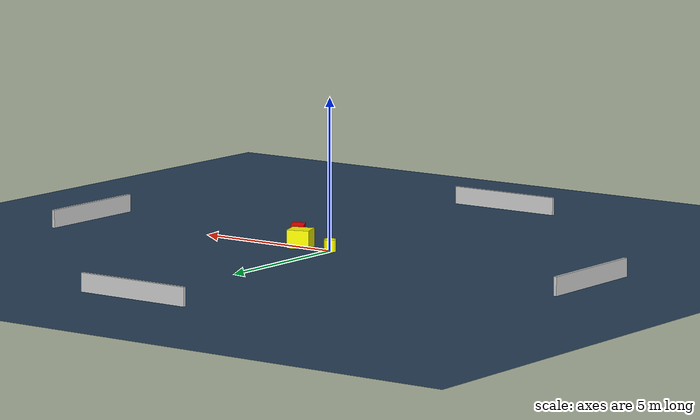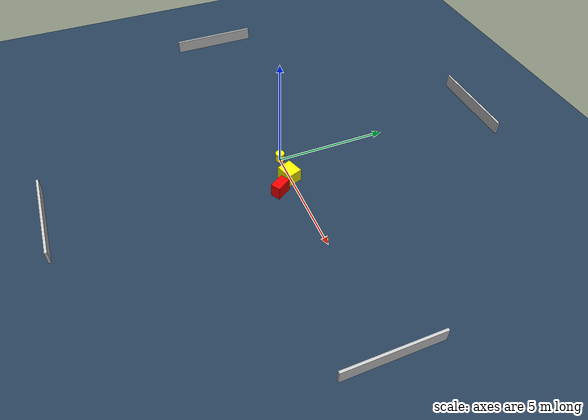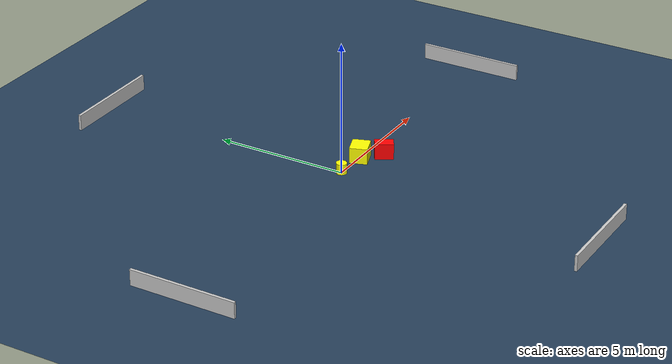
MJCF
<?xml version="1.0" ?>
<mujoco model="generated_environment">
  <option timestep="0.01" integrator="RK4" cone="elliptic"/>
  <default>
    <geom density="1"/>
  </default>
  <asset>
    <texture builtin="gradient" height="3072" name="skybox" rgb1="0.3 0.5 0.7" rgb2="0 0 0" type="skybox" width="512"/>
    <texture builtin="checker" height="300" name="groundplane" rgb1="0.2 0.3 0.4" rgb2="0.1 0.2 0.3" type="2d" width="300"/>
    <material name="groundplane" reflectance="0.2" texrepeat="5 5" texture="groundplane"/>
  </asset>
  <worldbody>
    <light dir="0 0 -1" directional="true" pos="0 0 1.5"/>
    <geom condim="3" friction="0.5 0.005 0.001" material="groundplane" name="floor" pos="0 0 0" size="0 0 0.05" type="plane"/>
    <body name="walls">
      <geom name="wall_1" condim="4" pos="-10.0 0.0 0.3" rgba="0.800000011920929 0.800000011920929 0.800000011920929 1.0" size="0.05 2.0 0.3" type="box"/>
      <geom name="wall_2" condim="4" pos="10.0 0.0 0.3" rgba="0.800000011920929 0.800000011920929 0.800000011920929 1.0" size="0.05 2.0 0.3" type="box"/>
      <geom name="wall_3" condim="4" pos="0.0 -10.0 0.3" rgba="0.800000011920929 0.800000011920929 0.800000011920929 1.0" size="2.0 0.05 0.3" type="box"/>
      <geom name="wall_4" condim="4" pos="0.0 10.0 0.3" rgba="0.800000011920929 0.800000011920929 0.800000011920929 1.0" size="2.0 0.05 0.3" type="box"/>
    </body>
    <body name="robot">
      <joint name="joint_x" type="slide" pos="0 0 0" axis="1 0 0"/>
      <joint name="joint_y" type="slide" pos="0 0 0" axis="0 1 0"/>
      <geom name="robot" type="cylinder" pos="0.0 0.0 0.2" size="0.2 0.2 0.0" mass="5.0" friction="1.0 0.005 0.0001" condim="4" rgba="1.0 1.0 0.0 1.0"/>
    </body>
    <body name="obstacle_1_movable">
      <geom name="obstacle_1_movable" condim="4" pos="1.2225673564068409 -0.05196094818294822 0.3" euler="0 0 199.36663538935088" friction="0.0 0.005 0.001" rgba="1.0 1.0 0.0 1.0" size="0.3708869573964506 0.33213877816349713 0.3" type="box" mass="0.1"/>
      <joint type="free"/>
    </body>
    <body name="obstacle_2_static">
      <geom name="obstacle_2_static" condim="4" pos="1.8191216736117084 -0.702536793302408 0.3" euler="0 0 301.1619471178849" friction="0.0 0.005 0.001" rgba="1.0 0.0 0.0 1.0" size="0.3470503218269028 0.2157785048041482 0.3" type="box"/>
    </body>
  </worldbody>
  <actuator>
    <motor name="actuator_x" joint="joint_x" gear="1" ctrlrange="-1 1"/>
    <motor name="actuator_y" joint="joint_y" gear="1" ctrlrange="-1 1"/>
  </actuator>
</mujoco>
